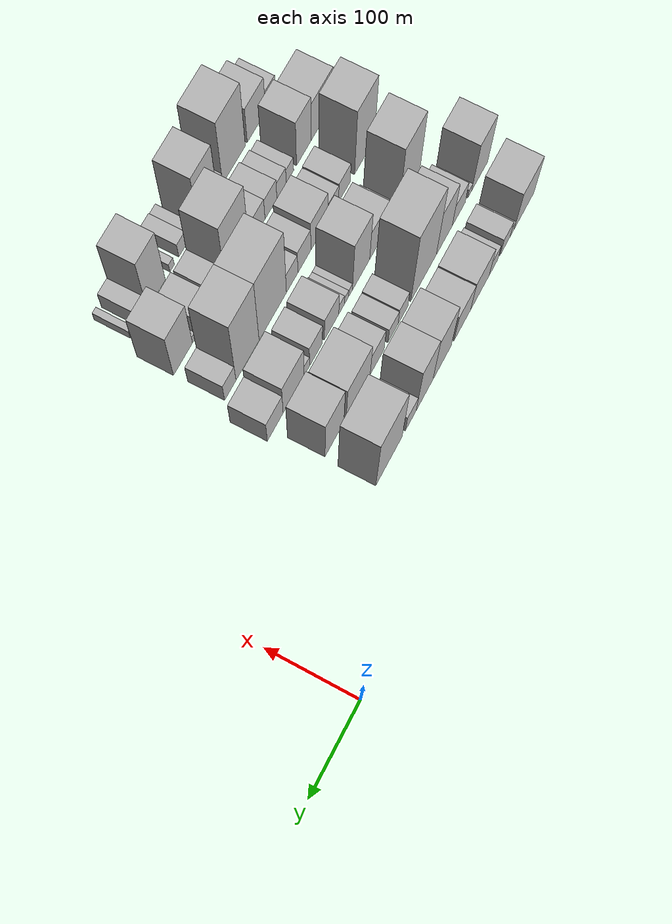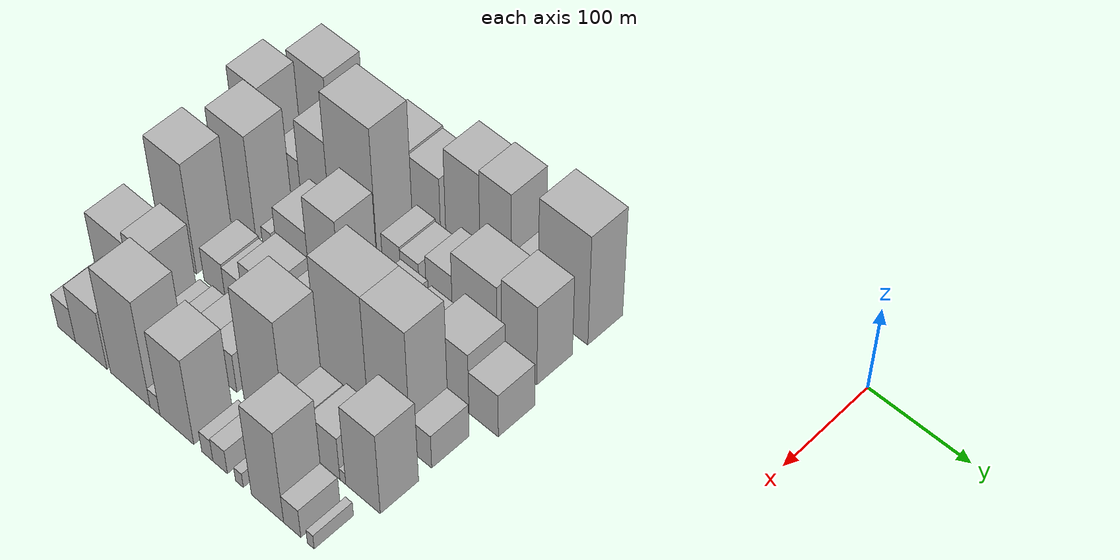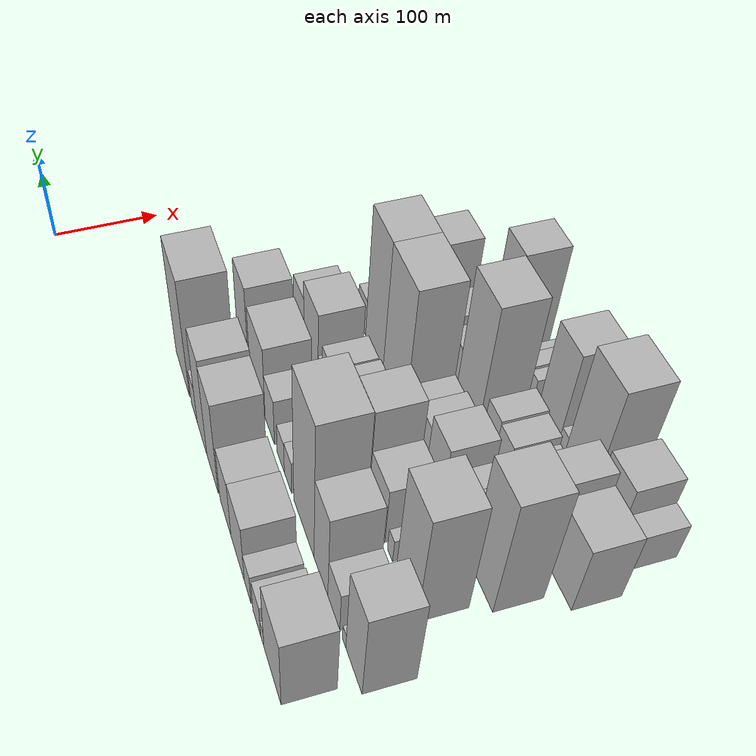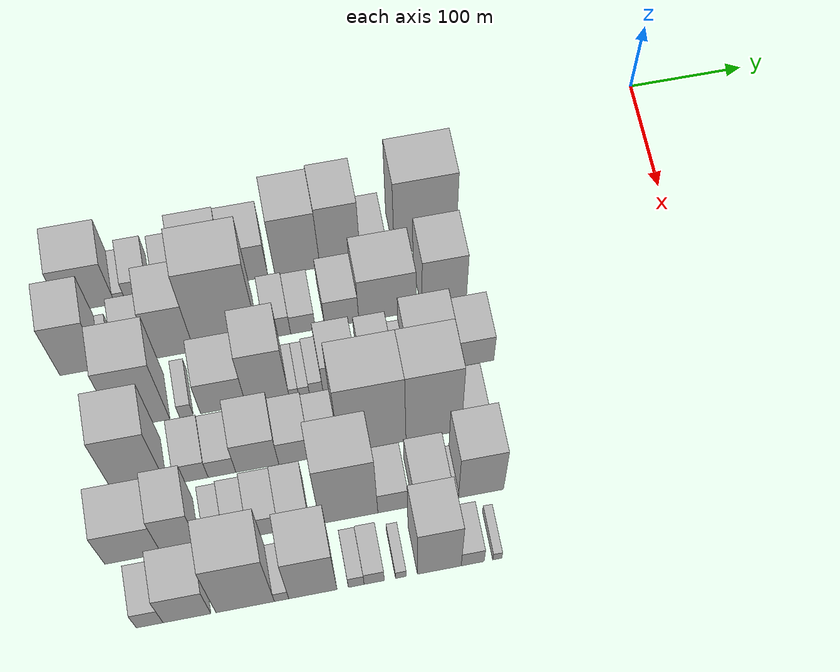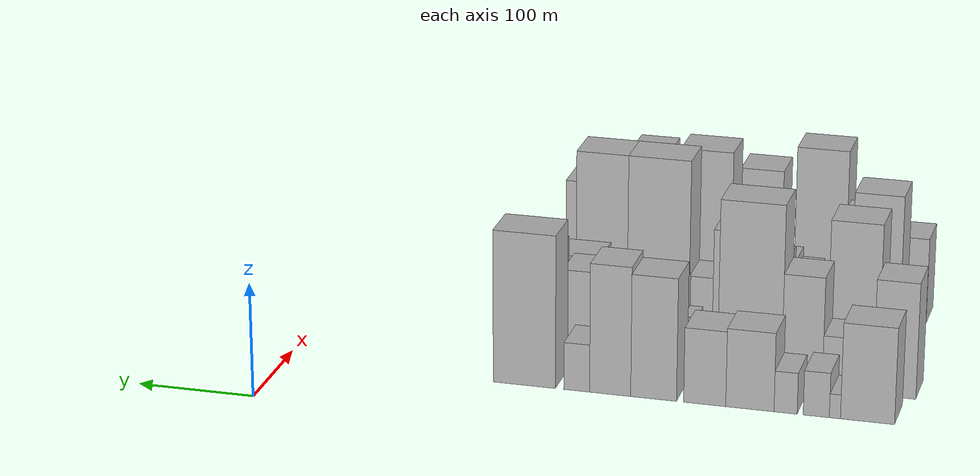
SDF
<sdf version="1.6">
 <world name="default">
  <model name="building_10">
   <static>1</static>
   <pose>100.0000 -497.0133 0 0.000000 0.000000 0.000000</pose>
   <link name="link">
    <pose>0 0 42.00 0 0 0</pose>
    <collision name="collision"><geometry><box><size>40.0000 44.2564 84.0000</size></box></geometry></collision>
    <visual name="visual">
     <cast_shadows>0</cast_shadows>
     <geometry><box><size>40.0000 44.2564 84.0000</size></box></geometry>
     <material>
      <script>
       <uri>model://HANNAS_wall/materials/scripts</uri>
       <uri>model://HANNAS_wall/materials/textures</uri>
       <name>vrc/HANNAS_wall</name>
      </script>
     </material>
    </visual>
   </link>
  </model>
  <model name="building_11">
   <static>1</static>
   <pose>100.0000 -470.3481 0 0.000000 0.000000 0.000000</pose>
   <link name="link">
    <pose>0 0 10.50 0 0 0</pose>
    <collision name="collision"><geometry><box><size>40.0000 9.0740 21.0000</size></box></geometry></collision>
    <visual name="visual">
     <cast_shadows>0</cast_shadows>
     <geometry><box><size>40.0000 9.0740 21.0000</size></box></geometry>
     <material>
      <script>
       <uri>model://HANNAS_wall/materials/scripts</uri>
       <uri>model://HANNAS_wall/materials/textures</uri>
       <name>vrc/HANNAS_wall</name>
      </script>
     </material>
    </visual>
   </link>
  </model>
  <model name="building_12">
   <static>1</static>
   <pose>100.0000 -455.0372 0 0.000000 0.000000 0.000000</pose>
   <link name="link">
    <pose>0 0 19.50 0 0 0</pose>
    <collision name="collision"><geometry><box><size>40.0000 21.5479 39.0000</size></box></geometry></collision>
    <visual name="visual">
     <cast_shadows>0</cast_shadows>
     <geometry><box><size>40.0000 21.5479 39.0000</size></box></geometry>
     <material>
      <script>
       <uri>model://HANNAS_wall/materials/scripts</uri>
       <uri>model://HANNAS_wall/materials/textures</uri>
       <name>vrc/HANNAS_wall</name>
      </script>
     </material>
    </visual>
   </link>
  </model>
  <model name="building_13">
   <static>1</static>
   <pose>100.0000 -429.6886 0 0.000000 0.000000 0.000000</pose>
   <link name="link">
    <pose>0 0 18.00 0 0 0</pose>
    <collision name="collision"><geometry><box><size>40.0000 19.1492 36.0000</size></box></geometry></collision>
    <visual name="visual">
     <cast_shadows>0</cast_shadows>
     <geometry><box><size>40.0000 19.1492 36.0000</size></box></geometry>
     <material>
      <script>
       <uri>model://HANNAS_wall/materials/scripts</uri>
       <uri>model://HANNAS_wall/materials/textures</uri>
       <name>vrc/HANNAS_wall</name>
      </script>
     </material>
    </visual>
   </link>
  </model>
  <model name="building_14">
   <static>1</static>
   <pose>100.0000 -400.0632 0 0.000000 0.000000 0.000000</pose>
   <link name="link">
    <pose>0 0 34.50 0 0 0</pose>
    <collision name="collision"><geometry><box><size>40.0000 40.1018 69.0000</size></box></geometry></collision>
    <visual name="visual">
     <cast_shadows>0</cast_shadows>
     <geometry><box><size>40.0000 40.1018 69.0000</size></box></geometry>
     <material>
      <script>
       <uri>model://HANNAS_wall/materials/scripts</uri>
       <uri>model://HANNAS_wall/materials/textures</uri>
       <name>vrc/HANNAS_wall</name>
      </script>
     </material>
    </visual>
   </link>
  </model>
  <model name="building_15">
   <static>1</static>
   <pose>100.0000 -362.3942 0 0.000000 0.000000 0.000000</pose>
   <link name="link">
    <pose>0 0 33.00 0 0 0</pose>
    <collision name="collision"><geometry><box><size>40.0000 35.2361 66.0000</size></box></geometry></collision>
    <visual name="visual">
     <cast_shadows>0</cast_shadows>
     <geometry><box><size>40.0000 35.2361 66.0000</size></box></geometry>
     <material>
      <script>
       <uri>model://HANNAS_wall/materials/scripts</uri>
       <uri>model://HANNAS_wall/materials/textures</uri>
       <name>vrc/HANNAS_wall</name>
      </script>
     </material>
    </visual>
   </link>
  </model>
  <model name="building_16">
   <static>1</static>
   <pose>100.0000 -319.4540 0 0.000000 0.000000 0.000000</pose>
   <link name="link">
    <pose>0 0 54.00 0 0 0</pose>
    <collision name="collision"><geometry><box><size>40.0000 38.6444 108.0000</size></box></geometry></collision>
    <visual name="visual">
     <cast_shadows>0</cast_shadows>
     <geometry><box><size>40.0000 38.6444 108.0000</size></box></geometry>
     <material>
      <script>
       <uri>model://HANNAS_wall/materials/scripts</uri>
       <uri>model://HANNAS_wall/materials/textures</uri>
       <name>vrc/HANNAS_wall</name>
      </script>
     </material>
    </visual>
   </link>
  </model>
  <model name="building_17">
   <static>1</static>
   <pose>100.0000 -282.7095 0 0.000000 0.000000 0.000000</pose>
   <link name="link">
    <pose>0 0 57.00 0 0 0</pose>
    <collision name="collision"><geometry><box><size>40.0000 34.8445 114.0000</size></box></geometry></collision>
    <visual name="visual">
     <cast_shadows>0</cast_shadows>
     <geometry><box><size>40.0000 34.8445 114.0000</size></box></geometry>
     <material>
      <script>
       <uri>model://HANNAS_wall/materials/scripts</uri>
       <uri>model://HANNAS_wall/materials/textures</uri>
       <name>vrc/HANNAS_wall</name>
      </script>
     </material>
    </visual>
   </link>
  </model>
  <model name="building_18">
   <static>1</static>
   <pose>100.0000 -254.2421 0 0.000000 0.000000 0.000000</pose>
   <link name="link">
    <pose>0 0 21.00 0 0 0</pose>
    <collision name="collision"><geometry><box><size>40.0000 22.0904 42.0000</size></box></geometry></collision>
    <visual name="visual">
     <cast_shadows>0</cast_shadows>
     <geometry><box><size>40.0000 22.0904 42.0000</size></box></geometry>
     <material>
      <script>
       <uri>model://HANNAS_wall/materials/scripts</uri>
       <uri>model://HANNAS_wall/materials/textures</uri>
       <name>vrc/HANNAS_wall</name>
      </script>
     </material>
    </visual>
   </link>
  </model>
  <model name="building_19">
   <static>1</static>
   <pose>100.0000 -209.4615 0 0.000000 0.000000 0.000000</pose>
   <link name="link">
    <pose>0 0 67.50 0 0 0</pose>
    <collision name="collision"><geometry><box><size>40.0000 53.4707 135.0000</size></box></geometry></collision>
    <visual name="visual">
     <cast_shadows>0</cast_shadows>
     <geometry><box><size>40.0000 53.4707 135.0000</size></box></geometry>
     <material>
      <script>
       <uri>model://HANNAS_wall/materials/scripts</uri>
       <uri>model://HANNAS_wall/materials/textures</uri>
       <name>vrc/HANNAS_wall</name>
      </script>
     </material>
    </visual>
   </link>
  </model>
  <model name="building_57">
   <static>1</static>
   <pose>155.0000 -509.9338 0 0.000000 0.000000 0.000000</pose>
   <link name="link">
    <pose>0 0 51.00 0 0 0</pose>
    <collision name="collision"><geometry><box><size>40.0000 35.6426 102.0000</size></box></geometry></collision>
    <visual name="visual">
     <cast_shadows>0</cast_shadows>
     <geometry><box><size>40.0000 35.6426 102.0000</size></box></geometry>
     <material>
      <script>
       <uri>model://HANNAS_wall/materials/scripts</uri>
       <uri>model://HANNAS_wall/materials/textures</uri>
       <name>vrc/HANNAS_wall</name>
      </script>
     </material>
    </visual>
   </link>
  </model>
  <model name="building_58">
   <static>1</static>
   <pose>155.0000 -488.0812 0 0.000000 0.000000 0.000000</pose>
   <link name="link">
    <pose>0 0 9.00 0 0 0</pose>
    <collision name="collision"><geometry><box><size>40.0000 8.0626 18.0000</size></box></geometry></collision>
    <visual name="visual">
     <cast_shadows>0</cast_shadows>
     <geometry><box><size>40.0000 8.0626 18.0000</size></box></geometry>
     <material>
      <script>
       <uri>model://HANNAS_wall/materials/scripts</uri>
       <uri>model://HANNAS_wall/materials/textures</uri>
       <name>vrc/HANNAS_wall</name>
      </script>
     </material>
    </visual>
   </link>
  </model>
  <model name="building_59">
   <static>1</static>
   <pose>155.0000 -463.9285 0 0.000000 0.000000 0.000000</pose>
   <link name="link">
    <pose>0 0 24.00 0 0 0</pose>
    <collision name="collision"><geometry><box><size>40.0000 28.2428 48.0000</size></box></geometry></collision>
    <visual name="visual">
     <cast_shadows>0</cast_shadows>
     <geometry><box><size>40.0000 28.2428 48.0000</size></box></geometry>
     <material>
      <script>
       <uri>model://HANNAS_wall/materials/scripts</uri>
       <uri>model://HANNAS_wall/materials/textures</uri>
       <name>vrc/HANNAS_wall</name>
      </script>
     </material>
    </visual>
   </link>
  </model>
  <model name="building_60">
   <static>1</static>
   <pose>155.0000 -432.6205 0 0.000000 0.000000 0.000000</pose>
   <link name="link">
    <pose>0 0 49.50 0 0 0</pose>
    <collision name="collision"><geometry><box><size>40.0000 34.3733 99.0000</size></box></geometry></collision>
    <visual name="visual">
     <cast_shadows>0</cast_shadows>
     <geometry><box><size>40.0000 34.3733 99.0000</size></box></geometry>
     <material>
      <script>
       <uri>model://HANNAS_wall/materials/scripts</uri>
       <uri>model://HANNAS_wall/materials/textures</uri>
       <name>vrc/HANNAS_wall</name>
      </script>
     </material>
    </visual>
   </link>
  </model>
  <model name="building_61">
   <static>1</static>
   <pose>155.0000 -388.2915 0 0.000000 0.000000 0.000000</pose>
   <link name="link">
    <pose>0 0 79.50 0 0 0</pose>
    <collision name="collision"><geometry><box><size>40.0000 54.2846 159.0000</size></box></geometry></collision>
    <visual name="visual">
     <cast_shadows>0</cast_shadows>
     <geometry><box><size>40.0000 54.2846 159.0000</size></box></geometry>
     <material>
      <script>
       <uri>model://HANNAS_wall/materials/scripts</uri>
       <uri>model://HANNAS_wall/materials/textures</uri>
       <name>vrc/HANNAS_wall</name>
      </script>
     </material>
    </visual>
   </link>
  </model>
  <model name="building_62">
   <static>1</static>
   <pose>155.0000 -344.7712 0 0.000000 0.000000 0.000000</pose>
   <link name="link">
    <pose>0 0 19.50 0 0 0</pose>
    <collision name="collision"><geometry><box><size>40.0000 20.7561 39.0000</size></box></geometry></collision>
    <visual name="visual">
     <cast_shadows>0</cast_shadows>
     <geometry><box><size>40.0000 20.7561 39.0000</size></box></geometry>
     <material>
      <script>
       <uri>model://HANNAS_wall/materials/scripts</uri>
       <uri>model://HANNAS_wall/materials/textures</uri>
       <name>vrc/HANNAS_wall</name>
      </script>
     </material>
    </visual>
   </link>
  </model>
  <model name="building_63">
   <static>1</static>
   <pose>155.0000 -323.8900 0 0.000000 0.000000 0.000000</pose>
   <link name="link">
    <pose>0 0 18.00 0 0 0</pose>
    <collision name="collision"><geometry><box><size>40.0000 21.0065 36.0000</size></box></geometry></collision>
    <visual name="visual">
     <cast_shadows>0</cast_shadows>
     <geometry><box><size>40.0000 21.0065 36.0000</size></box></geometry>
     <material>
      <script>
       <uri>model://HANNAS_wall/materials/scripts</uri>
       <uri>model://HANNAS_wall/materials/textures</uri>
       <name>vrc/HANNAS_wall</name>
      </script>
     </material>
    </visual>
   </link>
  </model>
  <model name="building_64">
   <static>1</static>
   <pose>155.0000 -290.9455 0 0.000000 0.000000 0.000000</pose>
   <link name="link">
    <pose>0 0 27.00 0 0 0</pose>
    <collision name="collision"><geometry><box><size>40.0000 28.8824 54.0000</size></box></geometry></collision>
    <visual name="visual">
     <cast_shadows>0</cast_shadows>
     <geometry><box><size>40.0000 28.8824 54.0000</size></box></geometry>
     <material>
      <script>
       <uri>model://HANNAS_wall/materials/scripts</uri>
       <uri>model://HANNAS_wall/materials/textures</uri>
       <name>vrc/HANNAS_wall</name>
      </script>
     </material>
    </visual>
   </link>
  </model>
  <model name="building_65">
   <static>1</static>
   <pose>155.0000 -252.1659 0 0.000000 0.000000 0.000000</pose>
   <link name="link">
    <pose>0 0 42.00 0 0 0</pose>
    <collision name="collision"><geometry><box><size>40.0000 48.6768 84.0000</size></box></geometry></collision>
    <visual name="visual">
     <cast_shadows>0</cast_shadows>
     <geometry><box><size>40.0000 48.6768 84.0000</size></box></geometry>
     <material>
      <script>
       <uri>model://HANNAS_wall/materials/scripts</uri>
       <uri>model://HANNAS_wall/materials/textures</uri>
       <name>vrc/HANNAS_wall</name>
      </script>
     </material>
    </visual>
   </link>
  </model>
  <model name="building_66">
   <static>1</static>
   <pose>155.0000 -203.9409 0 0.000000 0.000000 0.000000</pose>
   <link name="link">
    <pose>0 0 49.50 0 0 0</pose>
    <collision name="collision"><geometry><box><size>40.0000 37.7733 99.0000</size></box></geometry></collision>
    <visual name="visual">
     <cast_shadows>0</cast_shadows>
     <geometry><box><size>40.0000 37.7733 99.0000</size></box></geometry>
     <material>
      <script>
       <uri>model://HANNAS_wall/materials/scripts</uri>
       <uri>model://HANNAS_wall/materials/textures</uri>
       <name>vrc/HANNAS_wall</name>
      </script>
     </material>
    </visual>
   </link>
  </model>
  <model name="building_111">
   <static>1</static>
   <pose>210.0000 -465.6848 0 0.000000 0.000000 0.000000</pose>
   <link name="link">
    <pose>0 0 64.50 0 0 0</pose>
    <collision name="collision"><geometry><box><size>40.0000 43.9132 129.0000</size></box></geometry></collision>
    <visual name="visual">
     <cast_shadows>0</cast_shadows>
     <geometry><box><size>40.0000 43.9132 129.0000</size></box></geometry>
     <material>
      <script>
       <uri>model://HANNAS_wall/materials/scripts</uri>
       <uri>model://HANNAS_wall/materials/textures</uri>
       <name>vrc/HANNAS_wall</name>
      </script>
     </material>
    </visual>
   </link>
  </model>
  <model name="building_112">
   <static>1</static>
   <pose>210.0000 -430.0789 0 0.000000 0.000000 0.000000</pose>
   <link name="link">
    <pose>0 0 13.50 0 0 0</pose>
    <collision name="collision"><geometry><box><size>40.0000 11.2985 27.0000</size></box></geometry></collision>
    <visual name="visual">
     <cast_shadows>0</cast_shadows>
     <geometry><box><size>40.0000 11.2985 27.0000</size></box></geometry>
     <material>
      <script>
       <uri>model://HANNAS_wall/materials/scripts</uri>
       <uri>model://HANNAS_wall/materials/textures</uri>
       <name>vrc/HANNAS_wall</name>
      </script>
     </material>
    </visual>
   </link>
  </model>
  <model name="building_113">
   <static>1</static>
   <pose>210.0000 -399.5939 0 0.000000 0.000000 0.000000</pose>
   <link name="link">
    <pose>0 0 33.00 0 0 0</pose>
    <collision name="collision"><geometry><box><size>40.0000 37.6715 66.0000</size></box></geometry></collision>
    <visual name="visual">
     <cast_shadows>0</cast_shadows>
     <geometry><box><size>40.0000 37.6715 66.0000</size></box></geometry>
     <material>
      <script>
       <uri>model://HANNAS_wall/materials/scripts</uri>
       <uri>model://HANNAS_wall/materials/textures</uri>
       <name>vrc/HANNAS_wall</name>
      </script>
     </material>
    </visual>
   </link>
  </model>
  <model name="building_114">
   <static>1</static>
   <pose>210.0000 -362.7558 0 0.000000 0.000000 0.000000</pose>
   <link name="link">
    <pose>0 0 55.50 0 0 0</pose>
    <collision name="collision"><geometry><box><size>40.0000 36.0047 111.0000</size></box></geometry></collision>
    <visual name="visual">
     <cast_shadows>0</cast_shadows>
     <geometry><box><size>40.0000 36.0047 111.0000</size></box></geometry>
     <material>
      <script>
       <uri>model://HANNAS_wall/materials/scripts</uri>
       <uri>model://HANNAS_wall/materials/textures</uri>
       <name>vrc/HANNAS_wall</name>
      </script>
     </material>
    </visual>
   </link>
  </model>
  <model name="building_115">
   <static>1</static>
   <pose>210.0000 -340.8580 0 0.000000 0.000000 0.000000</pose>
   <link name="link">
    <pose>0 0 9.00 0 0 0</pose>
    <collision name="collision"><geometry><box><size>40.0000 7.7909 18.0000</size></box></geometry></collision>
    <visual name="visual">
     <cast_shadows>0</cast_shadows>
     <geometry><box><size>40.0000 7.7909 18.0000</size></box></geometry>
     <material>
      <script>
       <uri>model://HANNAS_wall/materials/scripts</uri>
       <uri>model://HANNAS_wall/materials/textures</uri>
       <name>vrc/HANNAS_wall</name>
      </script>
     </material>
    </visual>
   </link>
  </model>
  <model name="building_116">
   <static>1</static>
   <pose>210.0000 -332.4966 0 0.000000 0.000000 0.000000</pose>
   <link name="link">
    <pose>0 0 9.00 0 0 0</pose>
    <collision name="collision"><geometry><box><size>40.0000 8.9317 18.0000</size></box></geometry></collision>
    <visual name="visual">
     <cast_shadows>0</cast_shadows>
     <geometry><box><size>40.0000 8.9317 18.0000</size></box></geometry>
     <material>
      <script>
       <uri>model://HANNAS_wall/materials/scripts</uri>
       <uri>model://HANNAS_wall/materials/textures</uri>
       <name>vrc/HANNAS_wall</name>
      </script>
     </material>
    </visual>
   </link>
  </model>
  <model name="building_117">
   <static>1</static>
   <pose>210.0000 -322.3467 0 0.000000 0.000000 0.000000</pose>
   <link name="link">
    <pose>0 0 12.00 0 0 0</pose>
    <collision name="collision"><geometry><box><size>40.0000 11.3681 24.0000</size></box></geometry></collision>
    <visual name="visual">
     <cast_shadows>0</cast_shadows>
     <geometry><box><size>40.0000 11.3681 24.0000</size></box></geometry>
     <material>
      <script>
       <uri>model://HANNAS_wall/materials/scripts</uri>
       <uri>model://HANNAS_wall/materials/textures</uri>
       <name>vrc/HANNAS_wall</name>
      </script>
     </material>
    </visual>
   </link>
  </model>
  <model name="building_118">
   <static>1</static>
   <pose>210.0000 -301.8796 0 0.000000 0.000000 0.000000</pose>
   <link name="link">
    <pose>0 0 27.00 0 0 0</pose>
    <collision name="collision"><geometry><box><size>40.0000 29.5662 54.0000</size></box></geometry></collision>
    <visual name="visual">
     <cast_shadows>0</cast_shadows>
     <geometry><box><size>40.0000 29.5662 54.0000</size></box></geometry>
     <material>
      <script>
       <uri>model://HANNAS_wall/materials/scripts</uri>
       <uri>model://HANNAS_wall/materials/textures</uri>
       <name>vrc/HANNAS_wall</name>
      </script>
     </material>
    </visual>
   </link>
  </model>
  <model name="building_119">
   <static>1</static>
   <pose>210.0000 -270.0539 0 0.000000 0.000000 0.000000</pose>
   <link name="link">
    <pose>0 0 25.50 0 0 0</pose>
    <collision name="collision"><geometry><box><size>40.0000 26.0852 51.0000</size></box></geometry></collision>
    <visual name="visual">
     <cast_shadows>0</cast_shadows>
     <geometry><box><size>40.0000 26.0852 51.0000</size></box></geometry>
     <material>
      <script>
       <uri>model://HANNAS_wall/materials/scripts</uri>
       <uri>model://HANNAS_wall/materials/textures</uri>
       <name>vrc/HANNAS_wall</name>
      </script>
     </material>
    </visual>
   </link>
  </model>
  <model name="building_120">
   <static>1</static>
   <pose>210.0000 -251.5376 0 0.000000 0.000000 0.000000</pose>
   <link name="link">
    <pose>0 0 13.50 0 0 0</pose>
    <collision name="collision"><geometry><box><size>40.0000 10.9472 27.0000</size></box></geometry></collision>
    <visual name="visual">
     <cast_shadows>0</cast_shadows>
     <geometry><box><size>40.0000 10.9472 27.0000</size></box></geometry>
     <material>
      <script>
       <uri>model://HANNAS_wall/materials/scripts</uri>
       <uri>model://HANNAS_wall/materials/textures</uri>
       <name>vrc/HANNAS_wall</name>
      </script>
     </material>
    </visual>
   </link>
  </model>
  <model name="building_121">
   <static>1</static>
   <pose>210.0000 -225.1014 0 0.000000 0.000000 0.000000</pose>
   <link name="link">
    <pose>0 0 37.50 0 0 0</pose>
    <collision name="collision"><geometry><box><size>40.0000 41.9252 75.0000</size></box></geometry></collision>
    <visual name="visual">
     <cast_shadows>0</cast_shadows>
     <geometry><box><size>40.0000 41.9252 75.0000</size></box></geometry>
     <material>
      <script>
       <uri>model://HANNAS_wall/materials/scripts</uri>
       <uri>model://HANNAS_wall/materials/textures</uri>
       <name>vrc/HANNAS_wall</name>
      </script>
     </material>
    </visual>
   </link>
  </model>
  <model name="building_122">
   <static>1</static>
   <pose>210.0000 -188.5007 0 0.000000 0.000000 0.000000</pose>
   <link name="link">
    <pose>0 0 27.00 0 0 0</pose>
    <collision name="collision"><geometry><box><size>40.0000 31.2763 54.0000</size></box></geometry></collision>
    <visual name="visual">
     <cast_shadows>0</cast_shadows>
     <geometry><box><size>40.0000 31.2763 54.0000</size></box></geometry>
     <material>
      <script>
       <uri>model://HANNAS_wall/materials/scripts</uri>
       <uri>model://HANNAS_wall/materials/textures</uri>
       <name>vrc/HANNAS_wall</name>
      </script>
     </material>
    </visual>
   </link>
  </model>
  <model name="building_165">
   <static>1</static>
   <pose>265.0000 -474.9379 0 0.000000 0.000000 0.000000</pose>
   <link name="link">
    <pose>0 0 67.50 0 0 0</pose>
    <collision name="collision"><geometry><box><size>40.0000 42.1791 135.0000</size></box></geometry></collision>
    <visual name="visual">
     <cast_shadows>0</cast_shadows>
     <geometry><box><size>40.0000 42.1791 135.0000</size></box></geometry>
     <material>
      <script>
       <uri>model://HANNAS_wall/materials/scripts</uri>
       <uri>model://HANNAS_wall/materials/textures</uri>
       <name>vrc/HANNAS_wall</name>
      </script>
     </material>
    </visual>
   </link>
  </model>
  <model name="building_166">
   <static>1</static>
   <pose>265.0000 -432.4861 0 0.000000 0.000000 0.000000</pose>
   <link name="link">
    <pose>0 0 21.00 0 0 0</pose>
    <collision name="collision"><geometry><box><size>40.0000 24.7244 42.0000</size></box></geometry></collision>
    <visual name="visual">
     <cast_shadows>0</cast_shadows>
     <geometry><box><size>40.0000 24.7244 42.0000</size></box></geometry>
     <material>
      <script>
       <uri>model://HANNAS_wall/materials/scripts</uri>
       <uri>model://HANNAS_wall/materials/textures</uri>
       <name>vrc/HANNAS_wall</name>
      </script>
     </material>
    </visual>
   </link>
  </model>
  <model name="building_167">
   <static>1</static>
   <pose>265.0000 -408.8340 0 0.000000 0.000000 0.000000</pose>
   <link name="link">
    <pose>0 0 19.50 0 0 0</pose>
    <collision name="collision"><geometry><box><size>40.0000 22.5799 39.0000</size></box></geometry></collision>
    <visual name="visual">
     <cast_shadows>0</cast_shadows>
     <geometry><box><size>40.0000 22.5799 39.0000</size></box></geometry>
     <material>
      <script>
       <uri>model://HANNAS_wall/materials/scripts</uri>
       <uri>model://HANNAS_wall/materials/textures</uri>
       <name>vrc/HANNAS_wall</name>
      </script>
     </material>
    </visual>
   </link>
  </model>
  <model name="building_168">
   <static>1</static>
   <pose>265.0000 -379.9515 0 0.000000 0.000000 0.000000</pose>
   <link name="link">
    <pose>0 0 33.00 0 0 0</pose>
    <collision name="collision"><geometry><box><size>40.0000 35.1850 66.0000</size></box></geometry></collision>
    <visual name="visual">
     <cast_shadows>0</cast_shadows>
     <geometry><box><size>40.0000 35.1850 66.0000</size></box></geometry>
     <material>
      <script>
       <uri>model://HANNAS_wall/materials/scripts</uri>
       <uri>model://HANNAS_wall/materials/textures</uri>
       <name>vrc/HANNAS_wall</name>
      </script>
     </material>
    </visual>
   </link>
  </model>
  <model name="building_169">
   <static>1</static>
   <pose>265.0000 -349.0664 0 0.000000 0.000000 0.000000</pose>
   <link name="link">
    <pose>0 0 25.50 0 0 0</pose>
    <collision name="collision"><geometry><box><size>40.0000 26.5853 51.0000</size></box></geometry></collision>
    <visual name="visual">
     <cast_shadows>0</cast_shadows>
     <geometry><box><size>40.0000 26.5853 51.0000</size></box></geometry>
     <material>
      <script>
       <uri>model://HANNAS_wall/materials/scripts</uri>
       <uri>model://HANNAS_wall/materials/textures</uri>
       <name>vrc/HANNAS_wall</name>
      </script>
     </material>
    </visual>
   </link>
  </model>
  <model name="building_170">
   <static>1</static>
   <pose>265.0000 -324.1059 0 0.000000 0.000000 0.000000</pose>
   <link name="link">
    <pose>0 0 22.50 0 0 0</pose>
    <collision name="collision"><geometry><box><size>40.0000 23.3357 45.0000</size></box></geometry></collision>
    <visual name="visual">
     <cast_shadows>0</cast_shadows>
     <geometry><box><size>40.0000 23.3357 45.0000</size></box></geometry>
     <material>
      <script>
       <uri>model://HANNAS_wall/materials/scripts</uri>
       <uri>model://HANNAS_wall/materials/textures</uri>
       <name>vrc/HANNAS_wall</name>
      </script>
     </material>
    </visual>
   </link>
  </model>
  <model name="building_171">
   <static>1</static>
   <pose>265.0000 -284.9563 0 0.000000 0.000000 0.000000</pose>
   <link name="link">
    <pose>0 0 75.00 0 0 0</pose>
    <collision name="collision"><geometry><box><size>40.0000 54.9634 150.0000</size></box></geometry></collision>
    <visual name="visual">
     <cast_shadows>0</cast_shadows>
     <geometry><box><size>40.0000 54.9634 150.0000</size></box></geometry>
     <material>
      <script>
       <uri>model://HANNAS_wall/materials/scripts</uri>
       <uri>model://HANNAS_wall/materials/textures</uri>
       <name>vrc/HANNAS_wall</name>
      </script>
     </material>
    </visual>
   </link>
  </model>
  <model name="building_172">
   <static>1</static>
   <pose>265.0000 -234.5120 0 0.000000 0.000000 0.000000</pose>
   <link name="link">
    <pose>0 0 75.00 0 0 0</pose>
    <collision name="collision"><geometry><box><size>40.0000 45.9253 150.0000</size></box></geometry></collision>
    <visual name="visual">
     <cast_shadows>0</cast_shadows>
     <geometry><box><size>40.0000 45.9253 150.0000</size></box></geometry>
     <material>
      <script>
       <uri>model://HANNAS_wall/materials/scripts</uri>
       <uri>model://HANNAS_wall/materials/textures</uri>
       <name>vrc/HANNAS_wall</name>
      </script>
     </material>
    </visual>
   </link>
  </model>
  <model name="building_173">
   <static>1</static>
   <pose>265.0000 -200.3532 0 0.000000 0.000000 0.000000</pose>
   <link name="link">
    <pose>0 0 21.00 0 0 0</pose>
    <collision name="collision"><geometry><box><size>40.0000 22.3923 42.0000</size></box></geometry></collision>
    <visual name="visual">
     <cast_shadows>0</cast_shadows>
     <geometry><box><size>40.0000 22.3923 42.0000</size></box></geometry>
     <material>
      <script>
       <uri>model://HANNAS_wall/materials/scripts</uri>
       <uri>model://HANNAS_wall/materials/textures</uri>
       <name>vrc/HANNAS_wall</name>
      </script>
     </material>
    </visual>
   </link>
  </model>
  <model name="building_216">
   <static>1</static>
   <pose>320.0000 -488.3199 0 0.000000 0.000000 0.000000</pose>
   <link name="link">
    <pose>0 0 39.00 0 0 0</pose>
    <collision name="collision"><geometry><box><size>40.0000 45.2800 78.0000</size></box></geometry></collision>
    <visual name="visual">
     <cast_shadows>0</cast_shadows>
     <geometry><box><size>40.0000 45.2800 78.0000</size></box></geometry>
     <material>
      <script>
       <uri>model://HANNAS_wall/materials/scripts</uri>
       <uri>model://HANNAS_wall/materials/textures</uri>
       <name>vrc/HANNAS_wall</name>
      </script>
     </material>
    </visual>
   </link>
  </model>
  <model name="building_217">
   <static>1</static>
   <pose>320.0000 -450.4293 0 0.000000 0.000000 0.000000</pose>
   <link name="link">
    <pose>0 0 46.50 0 0 0</pose>
    <collision name="collision"><geometry><box><size>40.0000 30.5011 93.0000</size></box></geometry></collision>
    <visual name="visual">
     <cast_shadows>0</cast_shadows>
     <geometry><box><size>40.0000 30.5011 93.0000</size></box></geometry>
     <material>
      <script>
       <uri>model://HANNAS_wall/materials/scripts</uri>
       <uri>model://HANNAS_wall/materials/textures</uri>
       <name>vrc/HANNAS_wall</name>
      </script>
     </material>
    </visual>
   </link>
  </model>
  <model name="building_218">
   <static>1</static>
   <pose>320.0000 -421.4106 0 0.000000 0.000000 0.000000</pose>
   <link name="link">
    <pose>0 0 15.00 0 0 0</pose>
    <collision name="collision"><geometry><box><size>40.0000 15.5363 30.0000</size></box></geometry></collision>
    <visual name="visual">
     <cast_shadows>0</cast_shadows>
     <geometry><box><size>40.0000 15.5363 30.0000</size></box></geometry>
     <material>
      <script>
       <uri>model://HANNAS_wall/materials/scripts</uri>
       <uri>model://HANNAS_wall/materials/textures</uri>
       <name>vrc/HANNAS_wall</name>
      </script>
     </material>
    </visual>
   </link>
  </model>
  <model name="building_219">
   <static>1</static>
   <pose>320.0000 -404.0538 0 0.000000 0.000000 0.000000</pose>
   <link name="link">
    <pose>0 0 18.00 0 0 0</pose>
    <collision name="collision"><geometry><box><size>40.0000 19.1773 36.0000</size></box></geometry></collision>
    <visual name="visual">
     <cast_shadows>0</cast_shadows>
     <geometry><box><size>40.0000 19.1773 36.0000</size></box></geometry>
     <material>
      <script>
       <uri>model://HANNAS_wall/materials/scripts</uri>
       <uri>model://HANNAS_wall/materials/textures</uri>
       <name>vrc/HANNAS_wall</name>
      </script>
     </material>
    </visual>
   </link>
  </model>
  <model name="building_220">
   <static>1</static>
   <pose>320.0000 -382.2935 0 0.000000 0.000000 0.000000</pose>
   <link name="link">
    <pose>0 0 22.50 0 0 0</pose>
    <collision name="collision"><geometry><box><size>40.0000 24.3433 45.0000</size></box></geometry></collision>
    <visual name="visual">
     <cast_shadows>0</cast_shadows>
     <geometry><box><size>40.0000 24.3433 45.0000</size></box></geometry>
     <material>
      <script>
       <uri>model://HANNAS_wall/materials/scripts</uri>
       <uri>model://HANNAS_wall/materials/textures</uri>
       <name>vrc/HANNAS_wall</name>
      </script>
     </material>
    </visual>
   </link>
  </model>
  <model name="building_221">
   <static>1</static>
   <pose>320.0000 -357.9848 0 0.000000 0.000000 0.000000</pose>
   <link name="link">
    <pose>0 0 24.00 0 0 0</pose>
    <collision name="collision"><geometry><box><size>40.0000 24.2741 48.0000</size></box></geometry></collision>
    <visual name="visual">
     <cast_shadows>0</cast_shadows>
     <geometry><box><size>40.0000 24.2741 48.0000</size></box></geometry>
     <material>
      <script>
       <uri>model://HANNAS_wall/materials/scripts</uri>
       <uri>model://HANNAS_wall/materials/textures</uri>
       <name>vrc/HANNAS_wall</name>
      </script>
     </material>
    </visual>
   </link>
  </model>
  <model name="building_222">
   <static>1</static>
   <pose>320.0000 -314.3766 0 0.000000 0.000000 0.000000</pose>
   <link name="link">
    <pose>0 0 70.50 0 0 0</pose>
    <collision name="collision"><geometry><box><size>40.0000 46.9424 141.0000</size></box></geometry></collision>
    <visual name="visual">
     <cast_shadows>0</cast_shadows>
     <geometry><box><size>40.0000 46.9424 141.0000</size></box></geometry>
     <material>
      <script>
       <uri>model://HANNAS_wall/materials/scripts</uri>
       <uri>model://HANNAS_wall/materials/textures</uri>
       <name>vrc/HANNAS_wall</name>
      </script>
     </material>
    </visual>
   </link>
  </model>
  <model name="building_223">
   <static>1</static>
   <pose>320.0000 -278.5004 0 0.000000 0.000000 0.000000</pose>
   <link name="link">
    <pose>0 0 24.00 0 0 0</pose>
    <collision name="collision"><geometry><box><size>40.0000 24.8101 48.0000</size></box></geometry></collision>
    <visual name="visual">
     <cast_shadows>0</cast_shadows>
     <geometry><box><size>40.0000 24.8101 48.0000</size></box></geometry>
     <material>
      <script>
       <uri>model://HANNAS_wall/materials/scripts</uri>
       <uri>model://HANNAS_wall/materials/textures</uri>
       <name>vrc/HANNAS_wall</name>
      </script>
     </material>
    </visual>
   </link>
  </model>
  <model name="building_224">
   <static>1</static>
   <pose>320.0000 -246.7164 0 0.000000 0.000000 0.000000</pose>
   <link name="link">
    <pose>0 0 27.00 0 0 0</pose>
    <collision name="collision"><geometry><box><size>40.0000 30.7578 54.0000</size></box></geometry></collision>
    <visual name="visual">
     <cast_shadows>0</cast_shadows>
     <geometry><box><size>40.0000 30.7578 54.0000</size></box></geometry>
     <material>
      <script>
       <uri>model://HANNAS_wall/materials/scripts</uri>
       <uri>model://HANNAS_wall/materials/textures</uri>
       <name>vrc/HANNAS_wall</name>
      </script>
     </material>
    </visual>
   </link>
  </model>
  <model name="building_225">
   <static>1</static>
   <pose>320.0000 -228.1894 0 0.000000 0.000000 0.000000</pose>
   <link name="link">
    <pose>0 0 7.50 0 0 0</pose>
    <collision name="collision"><geometry><box><size>40.0000 6.2964 15.0000</size></box></geometry></collision>
    <visual name="visual">
     <cast_shadows>0</cast_shadows>
     <geometry><box><size>40.0000 6.2964 15.0000</size></box></geometry>
     <material>
      <script>
       <uri>model://HANNAS_wall/materials/scripts</uri>
       <uri>model://HANNAS_wall/materials/textures</uri>
       <name>vrc/HANNAS_wall</name>
      </script>
     </material>
    </visual>
   </link>
  </model>
  <model name="building_226">
   <static>1</static>
   <pose>320.0000 -206.5308 0 0.000000 0.000000 0.000000</pose>
   <link name="link">
    <pose>0 0 51.00 0 0 0</pose>
    <collision name="collision"><geometry><box><size>40.0000 37.0208 102.0000</size></box></geometry></collision>
    <visual name="visual">
     <cast_shadows>0</cast_shadows>
     <geometry><box><size>40.0000 37.0208 102.0000</size></box></geometry>
     <material>
      <script>
       <uri>model://HANNAS_wall/materials/scripts</uri>
       <uri>model://HANNAS_wall/materials/textures</uri>
       <name>vrc/HANNAS_wall</name>
      </script>
     </material>
    </visual>
   </link>
  </model>
  <model name="building_273">
   <static>1</static>
   <pose>375.0000 -482.4658 0 0.000000 0.000000 0.000000</pose>
   <link name="link">
    <pose>0 0 21.00 0 0 0</pose>
    <collision name="collision"><geometry><box><size>40.0000 21.0398 42.0000</size></box></geometry></collision>
    <visual name="visual">
     <cast_shadows>0</cast_shadows>
     <geometry><box><size>40.0000 21.0398 42.0000</size></box></geometry>
     <material>
      <script>
       <uri>model://HANNAS_wall/materials/scripts</uri>
       <uri>model://HANNAS_wall/materials/textures</uri>
       <name>vrc/HANNAS_wall</name>
      </script>
     </material>
    </visual>
   </link>
  </model>
  <model name="building_274">
   <static>1</static>
   <pose>375.0000 -453.0562 0 0.000000 0.000000 0.000000</pose>
   <link name="link">
    <pose>0 0 36.00 0 0 0</pose>
    <collision name="collision"><geometry><box><size>40.0000 37.7795 72.0000</size></box></geometry></collision>
    <visual name="visual">
     <cast_shadows>0</cast_shadows>
     <geometry><box><size>40.0000 37.7795 72.0000</size></box></geometry>
     <material>
      <script>
       <uri>model://HANNAS_wall/materials/scripts</uri>
       <uri>model://HANNAS_wall/materials/textures</uri>
       <name>vrc/HANNAS_wall</name>
      </script>
     </material>
    </visual>
   </link>
  </model>
  <model name="building_275">
   <static>1</static>
   <pose>375.0000 -406.9583 0 0.000000 0.000000 0.000000</pose>
   <link name="link">
    <pose>0 0 66.00 0 0 0</pose>
    <collision name="collision"><geometry><box><size>40.0000 46.4161 132.0000</size></box></geometry></collision>
    <visual name="visual">
     <cast_shadows>0</cast_shadows>
     <geometry><box><size>40.0000 46.4161 132.0000</size></box></geometry>
     <material>
      <script>
       <uri>model://HANNAS_wall/materials/scripts</uri>
       <uri>model://HANNAS_wall/materials/textures</uri>
       <name>vrc/HANNAS_wall</name>
      </script>
     </material>
    </visual>
   </link>
  </model>
  <model name="building_276">
   <static>1</static>
   <pose>375.0000 -378.0453 0 0.000000 0.000000 0.000000</pose>
   <link name="link">
    <pose>0 0 12.00 0 0 0</pose>
    <collision name="collision"><geometry><box><size>40.0000 11.4101 24.0000</size></box></geometry></collision>
    <visual name="visual">
     <cast_shadows>0</cast_shadows>
     <geometry><box><size>40.0000 11.4101 24.0000</size></box></geometry>
     <material>
      <script>
       <uri>model://HANNAS_wall/materials/scripts</uri>
       <uri>model://HANNAS_wall/materials/textures</uri>
       <name>vrc/HANNAS_wall</name>
      </script>
     </material>
    </visual>
   </link>
  </model>
  <model name="building_277">
   <static>1</static>
   <pose>375.0000 -353.0375 0 0.000000 0.000000 0.000000</pose>
   <link name="link">
    <pose>0 0 54.00 0 0 0</pose>
    <collision name="collision"><geometry><box><size>40.0000 38.6055 108.0000</size></box></geometry></collision>
    <visual name="visual">
     <cast_shadows>0</cast_shadows>
     <geometry><box><size>40.0000 38.6055 108.0000</size></box></geometry>
     <material>
      <script>
       <uri>model://HANNAS_wall/materials/scripts</uri>
       <uri>model://HANNAS_wall/materials/textures</uri>
       <name>vrc/HANNAS_wall</name>
      </script>
     </material>
    </visual>
   </link>
  </model>
  <model name="building_278">
   <static>1</static>
   <pose>375.0000 -318.4262 0 0.000000 0.000000 0.000000</pose>
   <link name="link">
    <pose>0 0 13.50 0 0 0</pose>
    <collision name="collision"><geometry><box><size>40.0000 12.6172 27.0000</size></box></geometry></collision>
    <visual name="visual">
     <cast_shadows>0</cast_shadows>
     <geometry><box><size>40.0000 12.6172 27.0000</size></box></geometry>
     <material>
      <script>
       <uri>model://HANNAS_wall/materials/scripts</uri>
       <uri>model://HANNAS_wall/materials/textures</uri>
       <name>vrc/HANNAS_wall</name>
      </script>
     </material>
    </visual>
   </link>
  </model>
  <model name="building_279">
   <static>1</static>
   <pose>375.0000 -304.0034 0 0.000000 0.000000 0.000000</pose>
   <link name="link">
    <pose>0 0 15.00 0 0 0</pose>
    <collision name="collision"><geometry><box><size>40.0000 16.2283 30.0000</size></box></geometry></collision>
    <visual name="visual">
     <cast_shadows>0</cast_shadows>
     <geometry><box><size>40.0000 16.2283 30.0000</size></box></geometry>
     <material>
      <script>
       <uri>model://HANNAS_wall/materials/scripts</uri>
       <uri>model://HANNAS_wall/materials/textures</uri>
       <name>vrc/HANNAS_wall</name>
      </script>
     </material>
    </visual>
   </link>
  </model>
  <model name="building_280">
   <static>1</static>
   <pose>375.0000 -282.5726 0 0.000000 0.000000 0.000000</pose>
   <link name="link">
    <pose>0 0 9.00 0 0 0</pose>
    <collision name="collision"><geometry><box><size>40.0000 8.6335 18.0000</size></box></geometry></collision>
    <visual name="visual">
     <cast_shadows>0</cast_shadows>
     <geometry><box><size>40.0000 8.6335 18.0000</size></box></geometry>
     <material>
      <script>
       <uri>model://HANNAS_wall/materials/scripts</uri>
       <uri>model://HANNAS_wall/materials/textures</uri>
       <name>vrc/HANNAS_wall</name>
      </script>
     </material>
    </visual>
   </link>
  </model>
  <model name="building_281">
   <static>1</static>
   <pose>375.0000 -251.6209 0 0.000000 0.000000 0.000000</pose>
   <link name="link">
    <pose>0 0 58.50 0 0 0</pose>
    <collision name="collision"><geometry><box><size>40.0000 35.2698 117.0000</size></box></geometry></collision>
    <visual name="visual">
     <cast_shadows>0</cast_shadows>
     <geometry><box><size>40.0000 35.2698 117.0000</size></box></geometry>
     <material>
      <script>
       <uri>model://HANNAS_wall/materials/scripts</uri>
       <uri>model://HANNAS_wall/materials/textures</uri>
       <name>vrc/HANNAS_wall</name>
      </script>
     </material>
    </visual>
   </link>
  </model>
  <model name="building_282">
   <static>1</static>
   <pose>375.0000 -224.6952 0 0.000000 0.000000 0.000000</pose>
   <link name="link">
    <pose>0 0 18.00 0 0 0</pose>
    <collision name="collision"><geometry><box><size>40.0000 18.5816 36.0000</size></box></geometry></collision>
    <visual name="visual">
     <cast_shadows>0</cast_shadows>
     <geometry><box><size>40.0000 18.5816 36.0000</size></box></geometry>
     <material>
      <script>
       <uri>model://HANNAS_wall/materials/scripts</uri>
       <uri>model://HANNAS_wall/materials/textures</uri>
       <name>vrc/HANNAS_wall</name>
      </script>
     </material>
    </visual>
   </link>
  </model>
  <model name="building_283">
   <static>1</static>
   <pose>375.0000 -204.7558 0 0.000000 0.000000 0.000000</pose>
   <link name="link">
    <pose>0 0 9.00 0 0 0</pose>
    <collision name="collision"><geometry><box><size>40.0000 7.2972 18.0000</size></box></geometry></collision>
    <visual name="visual">
     <cast_shadows>0</cast_shadows>
     <geometry><box><size>40.0000 7.2972 18.0000</size></box></geometry>
     <material>
      <script>
       <uri>model://HANNAS_wall/materials/scripts</uri>
       <uri>model://HANNAS_wall/materials/textures</uri>
       <name>vrc/HANNAS_wall</name>
      </script>
     </material>
    </visual>
   </link>
  </model>
 </world>
</sdf>
